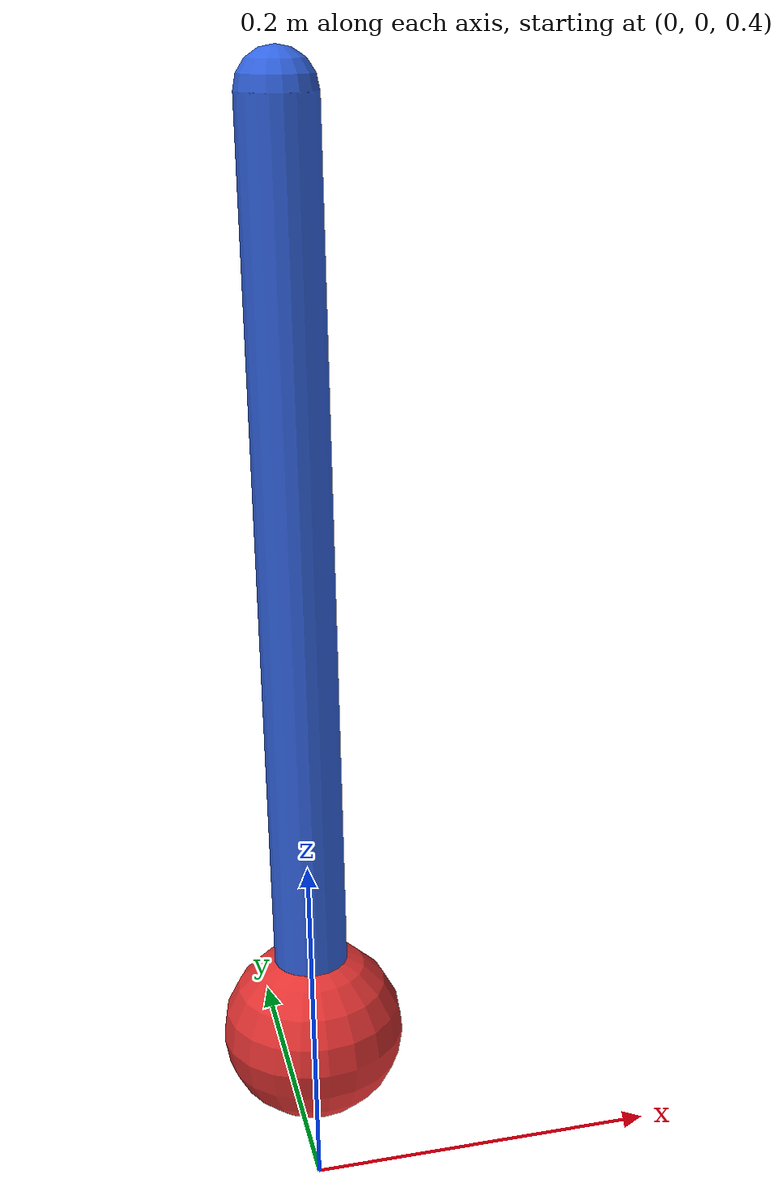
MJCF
<mujoco model="pendulum">
    <option timestep="0.002" />

    <visual>
        <headlight diffuse="0.6 0.6 0.6" ambient="0.3 0.3 0.3" specular="0 0 0"/>
        <rgba haze="0.15 0.25 0.35 1"/>
        <global fovy="120" azimuth="140" elevation="-30"/>
    </visual>

    <!-- Fancy cross board groudplane -->
    <asset>
        <texture type="skybox" builtin="gradient" rgb1="0.3 0.5 0.7" rgb2="0 0 0" width="512" height="3072"/>
        <texture type="2d" name="groundplane" builtin="checker" mark="edge" rgb1="0.2 0.3 0.4" rgb2="0.1 0.2 0.3"
        markrgb="0.8 0.8 0.8" width="300" height="300"/>
        <material name="groundplane" texture="groundplane" texuniform="true" texrepeat="5 5" reflectance="0.2"/>
    </asset>

    <worldbody>
        <light pos="0 0 2" />
        <geom name="floor" size="0 0 0.05" type="plane" material="groundplane"/>

        <body name="pole" pos="0 0 1">
            <joint name="hinge" type="hinge" axis="0 1 0" damping="0.1" />
            <!-- fromto to specify pos and ori using two point here (0 0 0) and (0 0 -0.5) -->
            <geom type="capsule" fromto="0 0 0 0 0 -0.5" size="0.02" mass="0.1" rgba="0.2 0.4 0.9 1" />
            <geom type="sphere" pos="0 0 -0.5" size="0.05" mass="0.9" rgba="0.9 0.2 0.2 1" />
        </body>
    </worldbody>

    <actuator>
        <motor name="hinge_motor" joint="hinge" ctrlrange="-20 20" />
    </actuator>
</mujoco>
